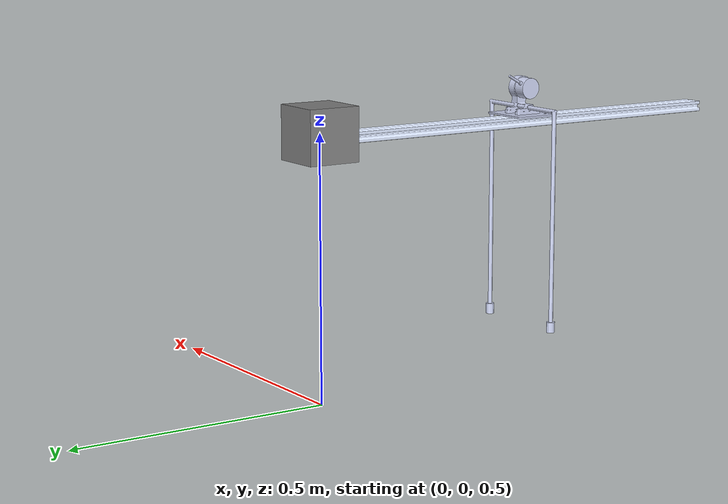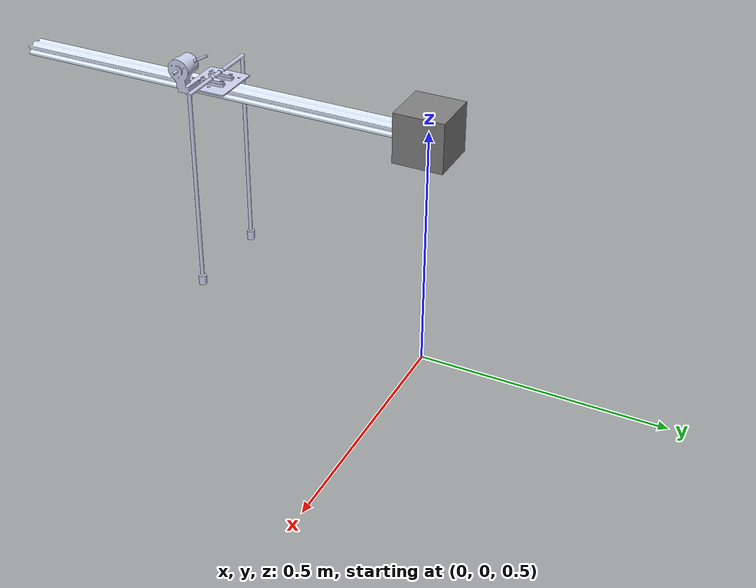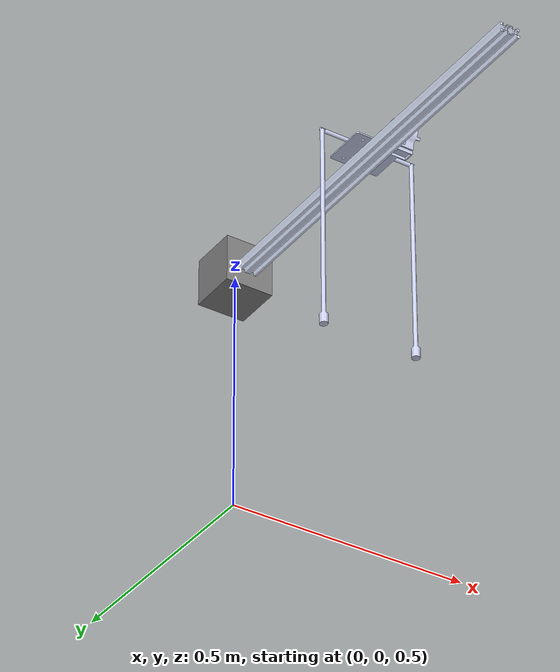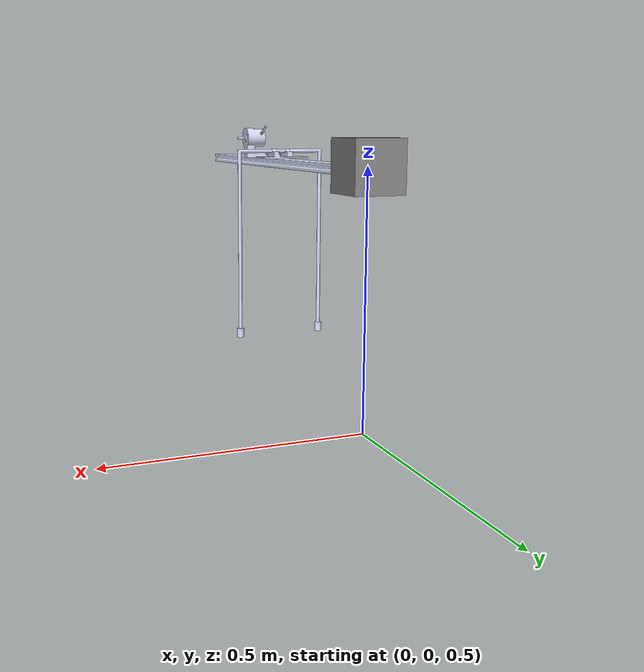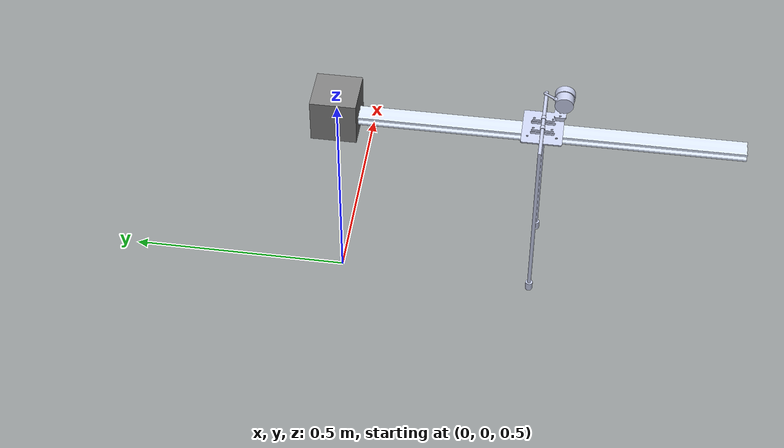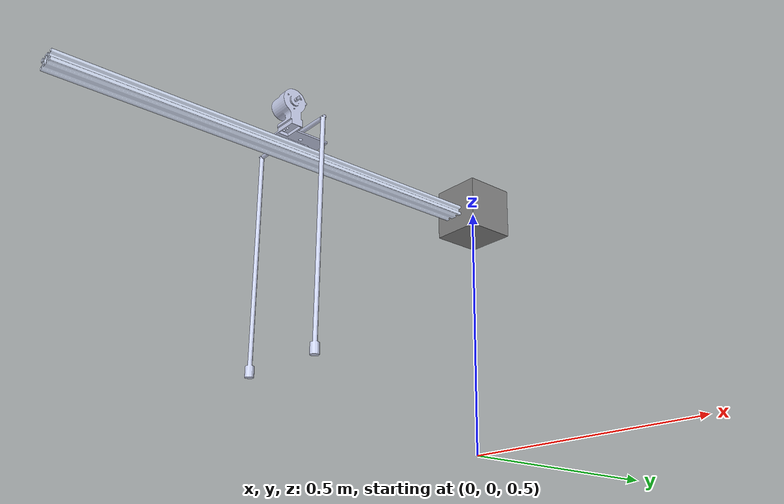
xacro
<?xml version="1.0"?>
<robot xmlns:xacro="http://www.ros.org/wiki/xacro" name="ros2Model">

    <!-- Import scara urdf file -->
    <xacro:include filename="$(find scara)/urdf/description.xacro" />

    <!-- Gazebo Hardware Component -->
    <ros2_control name="GazeboSimSystem" type="system">
        <hardware>
            <plugin>gz_ros2_control/GazeboSimSystem</plugin>
        </hardware>
        <joint name="corredera">
            <command_interface name="position">
                <param name="min">-0.43</param>
                <param name="max">0.43</param>
            </command_interface>
            <state_interface name="position">
                <param name="initial_value">0</param>
            </state_interface>
            <state_interface name="velocity" />
            <state_interface name="effort" />
        </joint>
        <joint name="pendulum_joint">
            <state_interface name="position">
                <param name="initial_value">0</param>
            </state_interface>
            <state_interface name="velocity" />
            <state_interface name="effort" />
        </joint>
    </ros2_control>

    <!-- Gazebo Plugin -->
    <gazebo>
        <plugin filename="gz_ros2_control-system"
            name="gz_ros2_control::GazeboSimROS2ControlPlugin">
            <parameters>$(find scara_gz)/config/gz_controller.yaml</parameters>
            <robot_param>robot_description</robot_param>
            <robot_param_node>robot_state_publisher</robot_param_node>
        </plugin>

        <!-- Physics parameters -->
        <physics type="ode">
            <max_step_size>0.0005</max_step_size>
            <real_time_factor>1.0</real_time_factor>
            <real_time_update_rate>2000</real_time_update_rate>
        </physics>

        <!-- Pose Publisher -->
        <plugin
            filename="gz-sim-pose-publisher-system"
            name="gz::sim::systems::PosePublisher">
            <use_pose_vector_msg>true</use_pose_vector_msg>
            <publish_model_pose>true</publish_model_pose>
            <publish_link_pose>true</publish_link_pose>
            <publish_collision_pose>false</publish_collision_pose>
            <publish_visual_pose>false</publish_visual_pose>
            <publish_nested_model_pose>false</publish_nested_model_pose>
        </plugin>

        <!-- Joint State Publisher -->
        <plugin
            filename="gz-sim-joint-state-publisher-system"
            name="gz::sim::systems::JointStatePublisher">
            <topic>/joint_states</topic>
        </plugin>
    </gazebo>

    <!-- Gazebo specific properties for links -->
    <gazebo reference="base_link">
        <material>Gazebo/Grey</material>
        <mu1>0.2</mu1>
        <mu2>0.2</mu2>
        <kp>1000000.0</kp>
        <kd>1.0</kd>
    </gazebo>

    <gazebo reference="riel">
        <material>Gazebo/Blue</material>
        <mu1>0.2</mu1>
        <mu2>0.2</mu2>
        <kp>1000000.0</kp>
        <kd>1.0</kd>
        <visual>
            <geometry>
                <mesh>
                    <uri>package://scara/meshes/riel.STL</uri>
                    <scale>1 1 1</scale>
                </mesh>
            </geometry>
        </visual>
        <collision>
            <geometry>
                <mesh>
                    <uri>package://scara/meshes/riel.STL</uri>
                    <scale>1 1 1</scale>
                </mesh>
            </geometry>
        </collision>
    </gazebo>

    <gazebo reference="carro">
        <material>Gazebo/Blue</material>
        <mu1>0.2</mu1>
        <mu2>0.2</mu2>
        <kp>1000000.0</kp>
        <kd>1.0</kd>
        <visual>
            <geometry>
                <mesh>
                    <uri>package://scara/meshes/carro.STL</uri>
                    <scale>1 1 1</scale>
                </mesh>
            </geometry>
        </visual>
        <collision>
            <geometry>
                <mesh>
                    <uri>package://scara/meshes/carro.STL</uri>
                    <scale>1 1 1</scale>
                </mesh>
            </geometry>
        </collision>
    </gazebo>

    <gazebo reference="pendulum_link">
        <material>Gazebo/Blue</material>
        <mu1>0.2</mu1>
        <mu2>0.2</mu2>
        <kp>1000000.0</kp>
        <kd>1.0</kd>
        <visual>
            <geometry>
                <mesh>
                    <uri>package://scara/meshes/pendulo.STL</uri>
                    <scale>1 1 1</scale>
                </mesh>
            </geometry>
        </visual>
        <collision>
            <geometry>
                <mesh>
                    <uri>package://scara/meshes/pendulo.STL</uri>
                    <scale>1 1 1</scale>
                </mesh>
            </geometry>
        </collision>
    </gazebo>

    <!-- Gazebo specific properties for joints -->
    <gazebo reference="corredera">
        <physics>
            <ode>
                <implicit_spring_damper>true</implicit_spring_damper>
                <cfm>0.1</cfm>
                <erp>0.2</erp>
                <mu>0.1</mu>
                <damping>0.1</damping>
                <friction>0.1</friction>
            </ode>
        </physics>
    </gazebo>

    <gazebo reference="pendulum_joint">
        <physics>
            <ode>
                <implicit_spring_damper>true</implicit_spring_damper>
                <cfm>0.1</cfm>
                <erp>0.2</erp>
                <mu>0.1</mu>
                <damping>0.1</damping>
                <friction>0.1</friction>
            </ode>
        </physics>
    </gazebo>
</robot>

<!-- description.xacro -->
<robot
  name="ros2Model">
  <link
    name="world" />
  <link
    name="base_link">
    <inertial>
      <origin
        xyz="0 0 0"
        rpy="0 0 0" />
      <mass
        value="0.001" />
      <inertia
        ixx="0.0001"
        ixy="0"
        ixz="0"
        iyy="0.0001"
        iyz="0"
        izz="0.0001" />
    </inertial>
    <visual>
      <origin
        xyz="0 0 0"
        rpy="0 0 0" />
      <geometry>
        <box
          size="0.1 0.1 0.1" />
      </geometry>
      <material
        name="">
        <color
          rgba="0.5 0.5 0.5 1" />
      </material>
    </visual>
  </link>
  <joint
    name="world_to_base"
    type="fixed">
    <parent
      link="world" />
    <child
      link="base_link" />
    <origin
      xyz="0 0 1"
      rpy="0 0 0" />
  </joint>
  <link
    name="riel">
    <inertial>
      <origin
        xyz="-0.0052 -0.01 0.44"
        rpy="0 0 0" />
      <mass
        value="0.71198" />
      <inertia
        ixx="0.045975"
        ixy="-2.2601E-21"
        ixz="-3.3958E-19"
        iyy="0.04606"
        iyz="1.3834E-20"
        izz="0.00014162" />
    </inertial>
    <visual>
      <origin
        xyz="0 0 0"
        rpy="0 0 0" />
      <geometry>
        <mesh
          filename="package://scara/meshes/riel.STL" />
      </geometry>
      <material
        name="">
        <color
          rgba="0.86667 0.9098 1 1" />
      </material>
    </visual>
    <collision>
      <origin
        xyz="0 0 0"
        rpy="0 0 0" />
      <geometry>
        <mesh
          filename="package://scara/meshes/riel.STL" />
      </geometry>
    </collision>
  </link>
  <joint
    name="base_to_riel"
    type="fixed">
    <origin
      xyz="0 0 0"
      rpy="1.5708 0 0" />
    <parent
      link="base_link" />
    <child
      link="riel" />
  </joint>
  <link
    name="carro">
    <inertial>
      <origin
        xyz="-0.033826 -0.027804 0.070708"
        rpy="0 0 0" />
      <mass
        value="0.4015" />
      <inertia
        ixx="3.7354E-05"
        ixy="-1.6408E-06"
        ixz="3.2962E-06"
        iyy="6.2799E-05"
        iyz="5.7265E-07"
        izz="4.541E-05" />
    </inertial>
    <visual>
      <origin
        xyz="0 0 0"
        rpy="0 0 0" />
      <geometry>
        <mesh
          filename="package://scara/meshes/carro.STL" />
      </geometry>
      <material
        name="">
        <color
          rgba="0.79216 0.81961 0.93333 1" />
      </material>
    </visual>
    <collision>
      <origin
        xyz="0 0 0"
        rpy="0 0 0" />
      <geometry>
        <mesh
          filename="package://scara/meshes/carro.STL" />
      </geometry>
    </collision>
  </link>
  <joint
    name="corredera"
    type="prismatic">
    <origin
      xyz="-0.0052 0.0015 0.40304"
      rpy="0 0 3.1416" />
    <parent
      link="riel" />
    <child
      link="carro" />
    <axis
      xyz="0 0 1" />
    <limit
      lower="-0.43"
      upper="0.43"
      effort="20"
      velocity="20" />
  </joint>
  <link
    name="pendulum_link">
    <inertial>
      <origin
        xyz="-1.2768E-15 -0.19577 0.020665"
        rpy="0 0 0" />
      <mass
        value="0.212" />
      <inertia
        ixx="0.0017534"
        ixy="-8.8623E-18"
        ixz="-1.2944E-19"
        iyy="0.00047667"
        iyz="6.4024E-19"
        izz="0.0012774" />
    </inertial>
    <visual>
      <origin
        xyz="0 0 0"
        rpy="0 0 0" />
      <geometry>
        <mesh
          filename="package://scara/meshes/pendulo.STL" />
      </geometry>
      <material
        name="">
        <color
          rgba="0.79216 0.81961 0.93333 1" />
      </material>
    </visual>
    <collision>
      <origin
        xyz="0 0 0"
        rpy="0 0 0" />
      <geometry>
        <mesh
          filename="package://scara/meshes/pendulo.STL" />
      </geometry>
    </collision>
  </link>
  <joint
    name="pendulum_joint"
    type="revolute">
    <origin
      xyz="-0.020665 -0.015276 0.044"
      rpy="0 -1.5708 3.1416" />
    <parent
      link="carro" />
    <child
      link="pendulum_link" />
    <axis
      xyz="0 0 -1" />
    <limit
      lower="-3.1416"
      upper="3.1416"
      effort="20"
      velocity="20" />
  </joint>
</robot>
